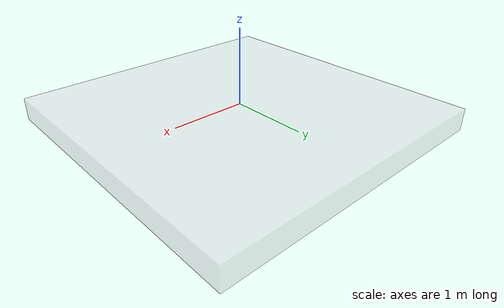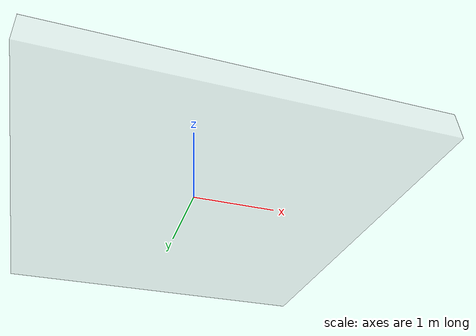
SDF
<?xml version="1.0" ?>
<sdf version="1.6">
  <model name="floor_slab_transparent">
    <static>true</static>
    <link name="floor_link">
      <pose>0 0 -0.15 0 0 0</pose>
      <collision name="floor_col">
        <geometry><box><size>4.0 4.0 0.30</size></box></geometry>
        <surface>
          <friction><ode><mu>0.9</mu><mu2>0.9</mu2></ode></friction>
        </surface>
      </collision>
      <visual name="floor_vis">
        <geometry><box><size>4.0 4.0 0.30</size></box></geometry>
        <material>
          <ambient>0.55 0.55 0.57 1</ambient>
          <diffuse>0.72 0.72 0.74 1</diffuse>
          <specular>0.55 0.55 0.57 1</specular>
          <emissive>0 0 0 1</emissive>
        </material>
        <transparency>0.75</transparency>
      </visual>
    </link>
  </model>
</sdf>
